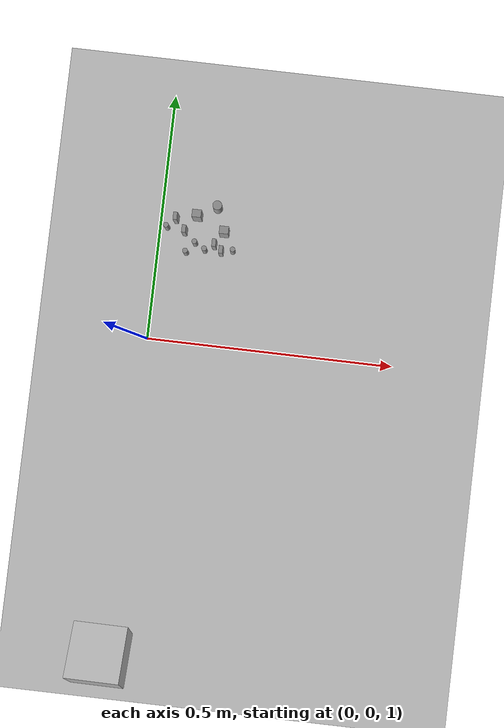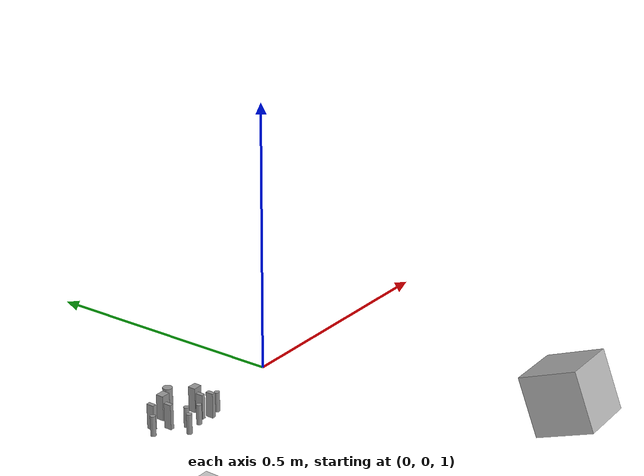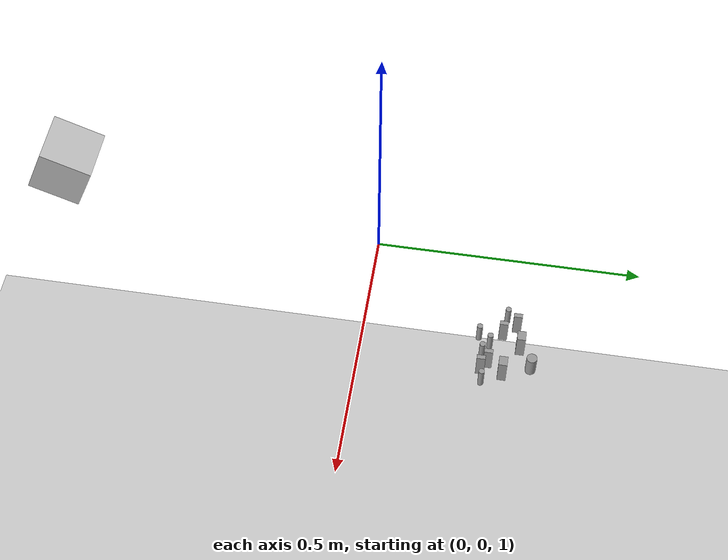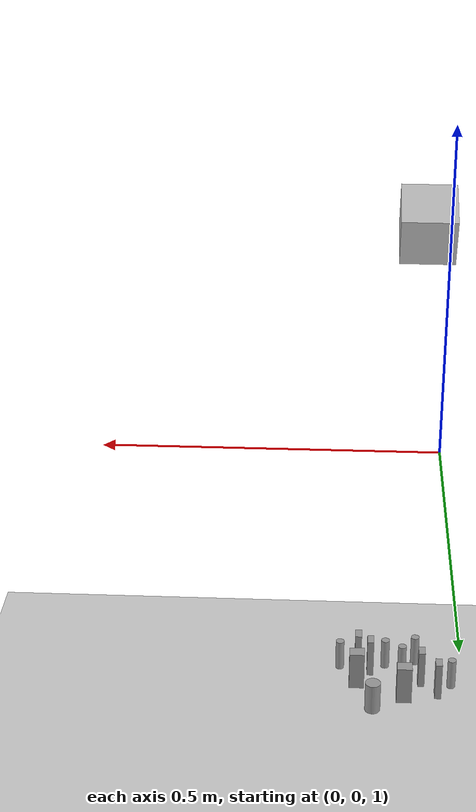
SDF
<sdf version="1.6">
 <world name="default">
  <light name="sun" type="directional">
   <pose>0 0 10 0 -0 0</pose>
   <diffuse>0.8 0.8 0.8 1</diffuse>
   <specular>0.2 0.2 0.2 1</specular>
   <attenuation>
    <range>1000</range>
    <constant>0.9</constant>
    <linear>0.01</linear>
    <quadratic>0.001</quadratic>
   </attenuation>
   <direction>-0.5 0.1 -0.9</direction>
  </light>
  <model name="ground_plane">
   <static>1</static>
   <link name="link">
    <collision name="collision">
     <geometry><plane><normal>0 0 1</normal><size>100 100</size></plane></geometry>
     <surface>
      <contact><collide_bitmask>65535</collide_bitmask></contact>
      <friction><ode><mu>100</mu><mu2>50</mu2></ode></friction>
     </surface>
    </collision>
    <visual name="visual">
     <cast_shadows>0</cast_shadows>
     <geometry><plane><normal>0 0 1</normal><size>100 100</size></plane></geometry>
     <material>
      <script><uri>file://media/materials/scripts/gazebo.material</uri><name>Gazebo/Grey</name></script>
     </material>
    </visual>
   </link>
  </model>
  <gravity>0 0 -9.8</gravity>
  <magnetic_field>6e-06 2.3e-05 -4.2e-05</magnetic_field>
  <atmosphere type="adiabatic"/>
  <physics name="default_physics" default="0" type="ode">
   <max_step_size>0.001</max_step_size>
   <real_time_factor>1</real_time_factor>
   <real_time_update_rate>1000</real_time_update_rate>
  </physics>
  <scene><ambient>0.4 0.4 0.4 1</ambient><background>0.7 0.7 0.7 1</background><shadows>1</shadows></scene>
  <spherical_coordinates>
   <surface_model>EARTH_WGS84</surface_model>
   <latitude_deg>0</latitude_deg>
   <longitude_deg>0</longitude_deg>
   <elevation>0</elevation>
   <heading_deg>0</heading_deg>
  </spherical_coordinates>
  <model name="unit_cylinder_clone">
   <pose>0.096208 0.322662 0.797203 -0.0008 0.000386 -0.000326</pose>
   <link name="link">
    <inertial>
     <mass>1</mass>
     <inertia><ixx>0.145833</ixx><ixy>0</ixy><ixz>0</ixz><iyy>0.145833</iyy><iyz>0</iyz><izz>0.125</izz></inertia>
    </inertial>
    <collision name="collision">
     <geometry><cylinder><radius>0.0105804</radius><length>0.0443242</length></cylinder></geometry>
    </collision>
    <visual name="visual">
     <geometry><cylinder><radius>0.0105804</radius><length>0.0443242</length></cylinder></geometry>
     <material>
      <script><name>Gazebo/Grey</name><uri>file://media/materials/scripts/gazebo.material</uri></script>
     </material>
    </visual>
   </link>
  </model>
  <model name="unit_box_clone_clone">
   <pose>0.053068 0.29769 0.802629 3.6e-05 2.5e-05 5.6e-05</pose>
   <link name="link">
    <inertial>
     <mass>1</mass>
     <inertia>
      <ixx>0.166667</ixx>
      <ixy>0</ixy>
      <ixz>0</ixz>
      <iyy>0.166667</iyy>
      <iyz>0</iyz>
      <izz>0.166667</izz>
     </inertia>
    </inertial>
    <collision name="collision"><geometry><box><size>0.020718 0.017173 0.05525</size></box></geometry></collision>
    <visual name="visual">
     <geometry><box><size>0.020718 0.017173 0.05525</size></box></geometry>
     <material>
      <script><name>Gazebo/Grey</name><uri>file://media/materials/scripts/gazebo.material</uri></script>
     </material>
    </visual>
   </link>
  </model>
  <model name="unit_box_clone_0">
   <pose>0.117958 0.26742 0.802628 3.6e-05 2.5e-05 5.6e-05</pose>
   <link name="link">
    <inertial>
     <mass>1</mass>
     <inertia>
      <ixx>0.166667</ixx>
      <ixy>0</ixy>
      <ixz>0</ixz>
      <iyy>0.166667</iyy>
      <iyz>0</iyz>
      <izz>0.166667</izz>
     </inertia>
    </inertial>
    <collision name="collision"><geometry><box><size>0.020718 0.017173 0.05525</size></box></geometry></collision>
    <visual name="visual">
     <geometry><box><size>0.020718 0.017173 0.05525</size></box></geometry>
     <material>
      <script><name>Gazebo/Grey</name><uri>file://media/materials/scripts/gazebo.material</uri></script>
     </material>
    </visual>
   </link>
  </model>
  <model name="unit_cylinder_clone_clone_clone">
   <pose>0.077689 0.222873 0.797294 -0.0008 0.000386 -0.000326</pose>
   <link name="link">
    <inertial>
     <mass>1</mass>
     <inertia><ixx>0.145833</ixx><ixy>0</ixy><ixz>0</ixz><iyy>0.145833</iyy><iyz>0</iyz><izz>0.125</izz></inertia>
    </inertial>
    <collision name="collision">
     <geometry><cylinder><radius>0.00580524</radius><length>0.0443242</length></cylinder></geometry>
    </collision>
    <visual name="visual">
     <geometry><cylinder><radius>0.00580524</radius><length>0.0443242</length></cylinder></geometry>
     <material>
      <script><name>Gazebo/Grey</name><uri>file://media/materials/scripts/gazebo.material</uri></script>
     </material>
    </visual>
   </link>
  </model>
  <model name="unit_box_clone_clone_0">
   <pose>0.028287 0.26047 0.802629 3.6e-05 2.5e-05 5.6e-05</pose>
   <link name="link">
    <inertial>
     <mass>1</mass>
     <inertia>
      <ixx>0.166667</ixx>
      <ixy>0</ixy>
      <ixz>0</ixz>
      <iyy>0.166667</iyy>
      <iyz>0</iyz>
      <izz>0.166667</izz>
     </inertia>
    </inertial>
    <collision name="collision"><geometry><box><size>0.008974 0.017173 0.05525</size></box></geometry></collision>
    <visual name="visual">
     <geometry><box><size>0.008974 0.017173 0.05525</size></box></geometry>
     <material>
      <script><name>Gazebo/Grey</name><uri>file://media/materials/scripts/gazebo.material</uri></script>
     </material>
    </visual>
   </link>
  </model>
  <model name="unit_box_clone_clone_1">
   <pose>0.115759 0.223523 0.802624 3.6e-05 2.5e-05 5.6e-05</pose>
   <link name="link">
    <inertial>
     <mass>1</mass>
     <inertia>
      <ixx>0.166667</ixx>
      <ixy>0</ixy>
      <ixz>0</ixz>
      <iyy>0.166667</iyy>
      <iyz>0</iyz>
      <izz>0.166667</izz>
     </inertia>
    </inertial>
    <collision name="collision"><geometry><box><size>0.008974 0.017173 0.05525</size></box></geometry></collision>
    <visual name="visual">
     <geometry><box><size>0.008974 0.017173 0.05525</size></box></geometry>
     <material>
      <script><name>Gazebo/Grey</name><uri>file://media/materials/scripts/gazebo.material</uri></script>
     </material>
    </visual>
   </link>
  </model>
  <model name="unit_box_clone_clone_2">
   <pose>0.098849 0.236777 0.802628 3.6e-05 2.5e-05 5.6e-05</pose>
   <link name="link">
    <inertial>
     <mass>1</mass>
     <inertia>
      <ixx>0.166667</ixx>
      <ixy>0</ixy>
      <ixz>0</ixz>
      <iyy>0.166667</iyy>
      <iyz>0</iyz>
      <izz>0.166667</izz>
     </inertia>
    </inertial>
    <collision name="collision"><geometry><box><size>0.008974 0.017173 0.05525</size></box></geometry></collision>
    <visual name="visual">
     <geometry><box><size>0.008974 0.017173 0.05525</size></box></geometry>
     <material>
      <script><name>Gazebo/Grey</name><uri>file://media/materials/scripts/gazebo.material</uri></script>
     </material>
    </visual>
   </link>
  </model>
  <model name="unit_box_clone_clone_3">
   <pose>0.006034 0.286638 0.802628 3.6e-05 2.5e-05 5.6e-05</pose>
   <link name="link">
    <inertial>
     <mass>1</mass>
     <inertia>
      <ixx>0.166667</ixx>
      <ixy>0</ixy>
      <ixz>0</ixz>
      <iyy>0.166667</iyy>
      <iyz>0</iyz>
      <izz>0.166667</izz>
     </inertia>
    </inertial>
    <collision name="collision"><geometry><box><size>0.008974 0.017173 0.05525</size></box></geometry></collision>
    <visual name="visual">
     <geometry><box><size>0.008974 0.017173 0.05525</size></box></geometry>
     <material>
      <script><name>Gazebo/Grey</name><uri>file://media/materials/scripts/gazebo.material</uri></script>
     </material>
    </visual>
   </link>
  </model>
  <model name="unit_cylinder_clone_clone_clone_0">
   <pose>0.054353 0.236266 0.797231 -0.0008 0.000386 -0.000326</pose>
   <link name="link">
    <inertial>
     <mass>1</mass>
     <inertia><ixx>0.145833</ixx><ixy>0</ixy><ixz>0</ixz><iyy>0.145833</iyy><iyz>0</iyz><izz>0.125</izz></inertia>
    </inertial>
    <collision name="collision">
     <geometry><cylinder><radius>0.00580524</radius><length>0.0443242</length></cylinder></geometry>
    </collision>
    <visual name="visual">
     <geometry><cylinder><radius>0.00580524</radius><length>0.0443242</length></cylinder></geometry>
     <material>
      <script><name>Gazebo/Grey</name><uri>file://media/materials/scripts/gazebo.material</uri></script>
     </material>
    </visual>
   </link>
  </model>
  <model name="unit_cylinder_clone_clone_clone_1">
   <pose>-0.013409 0.265894 0.797246 -0.0008 0.000386 -0.000326</pose>
   <link name="link">
    <inertial>
     <mass>1</mass>
     <inertia><ixx>0.145833</ixx><ixy>0</ixy><ixz>0</ixz><iyy>0.145833</iyy><iyz>0</iyz><izz>0.125</izz></inertia>
    </inertial>
    <collision name="collision">
     <geometry><cylinder><radius>0.00580524</radius><length>0.0443242</length></cylinder></geometry>
    </collision>
    <visual name="visual">
     <geometry><cylinder><radius>0.00580524</radius><length>0.0443242</length></cylinder></geometry>
     <material>
      <script><name>Gazebo/Grey</name><uri>file://media/materials/scripts/gazebo.material</uri></script>
     </material>
    </visual>
   </link>
  </model>
  <model name="unit_cylinder_clone_clone_clone_2">
   <pose>0.14146 0.227819 0.797169 -0.0008 0.000386 -0.000326</pose>
   <link name="link">
    <inertial>
     <mass>1</mass>
     <inertia><ixx>0.145833</ixx><ixy>0</ixy><ixz>0</ixz><iyy>0.145833</iyy><iyz>0</iyz><izz>0.125</izz></inertia>
    </inertial>
    <collision name="collision">
     <geometry><cylinder><radius>0.00580524</radius><length>0.0443242</length></cylinder></geometry>
    </collision>
    <visual name="visual">
     <geometry><cylinder><radius>0.00580524</radius><length>0.0443242</length></cylinder></geometry>
     <material>
      <script><name>Gazebo/Grey</name><uri>file://media/materials/scripts/gazebo.material</uri></script>
     </material>
    </visual>
   </link>
  </model>
  <model name="unit_cylinder_clone_clone_clone_3">
   <pose>0.03577 0.213141 0.797221 -0.0008 0.000386 -0.000326</pose>
   <link name="link">
    <inertial>
     <mass>1</mass>
     <inertia><ixx>0.145833</ixx><ixy>0</ixy><ixz>0</ixz><iyy>0.145833</iyy><iyz>0</iyz><izz>0.125</izz></inertia>
    </inertial>
    <collision name="collision">
     <geometry><cylinder><radius>0.00580524</radius><length>0.0443242</length></cylinder></geometry>
    </collision>
    <visual name="visual">
     <geometry><cylinder><radius>0.00580524</radius><length>0.0443242</length></cylinder></geometry>
     <material>
      <script><name>Gazebo/Grey</name><uri>file://media/materials/scripts/gazebo.material</uri></script>
     </material>
    </visual>
   </link>
  </model>
  <model name="camera">
   <pose>-0.001432 -0.600014 1.13532 0 0.393535 1.56262</pose>
   <link name="link">
    <inertial>
     <mass>0.1</mass>
     <inertia>
      <ixx>0.000166667</ixx>
      <iyy>0.000166667</iyy>
      <izz>0.000166667</izz>
      <ixy>0</ixy>
      <ixz>0</ixz>
      <iyz>0</iyz>
     </inertia>
    </inertial>
    <collision name="collision"><geometry><box><size>0.1 0.1 0.1</size></box></geometry></collision>
    <visual name="visual"><geometry><box><size>0.1 0.1 0.1</size></box></geometry></visual>
    <sensor name="camera" type="camera">
     <camera name="__default__">
      <horizontal_fov>1.047</horizontal_fov>
      <image><width>320</width><height>240</height></image>
      <clip><near>0.1</near><far>100</far></clip>
     </camera>
     <always_on>1</always_on>
     <update_rate>30</update_rate>
     <visualize>1</visualize>
    </sensor>
   </link>
  </model>
 </world>
</sdf>
